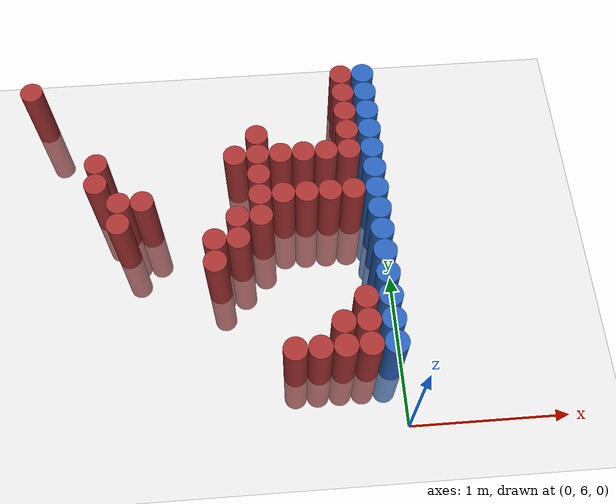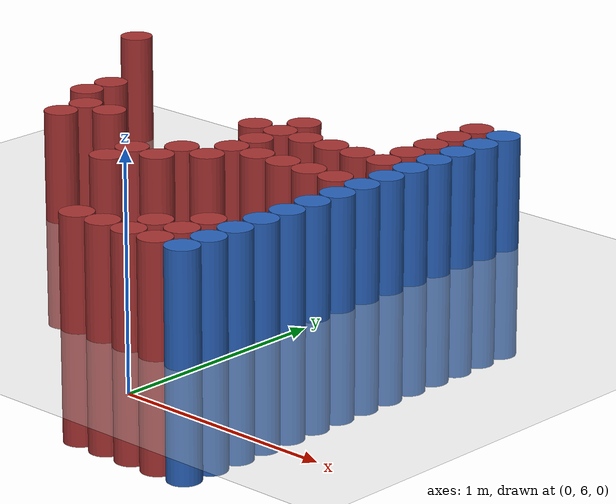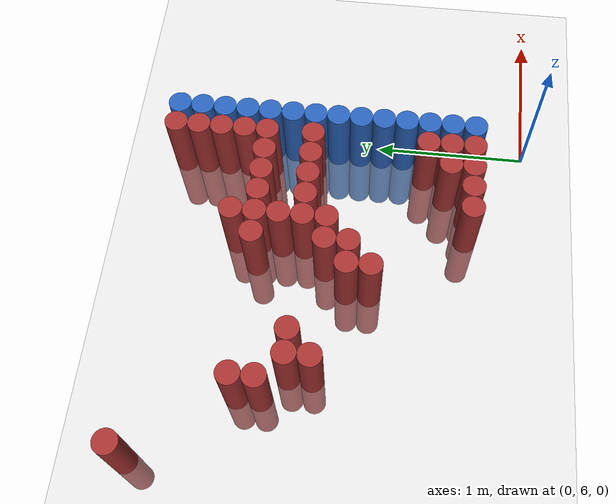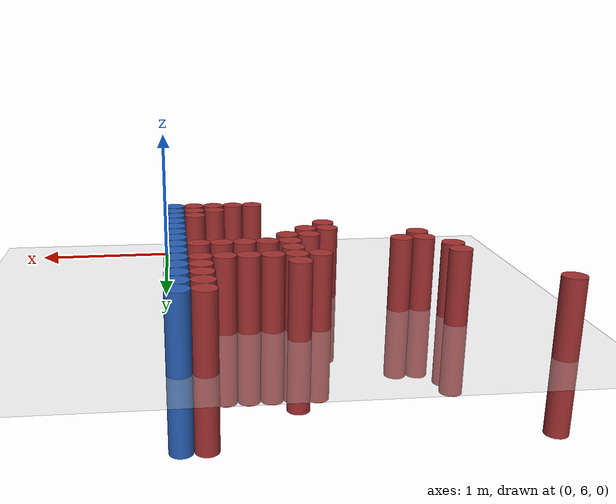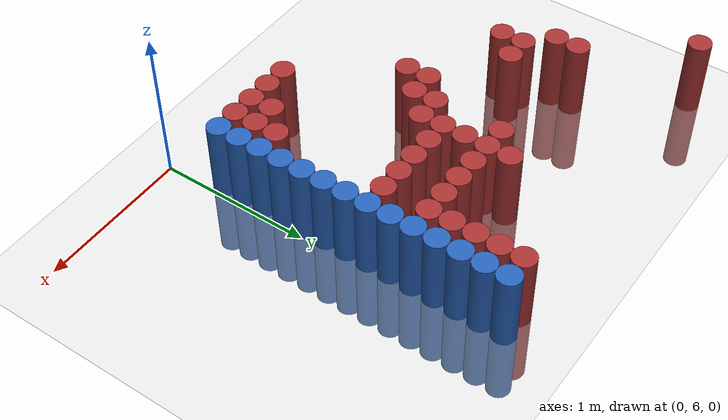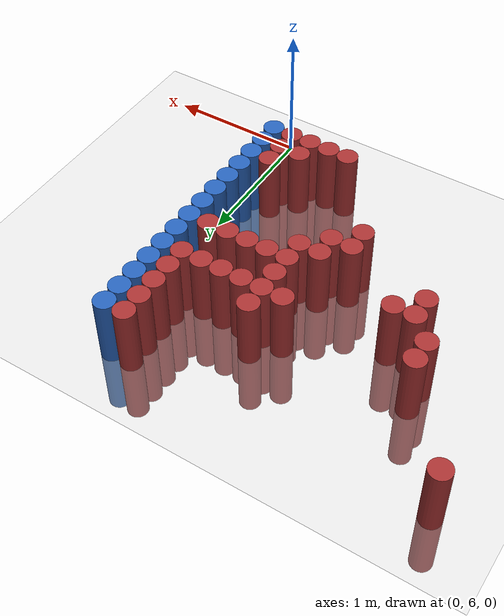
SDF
<sdf version="1.6">
 <world name="default">
  <model name="ground_plane">
   <static>1</static>
   <link name="link">
    <collision name="collision">
     <geometry><plane><normal>0 0 1</normal><size>100 100</size></plane></geometry>
     <surface><friction><ode><mu>100</mu><mu2>50</mu2></ode></friction></surface>
    </collision>
    <visual name="visual">
     <cast_shadows>0</cast_shadows>
     <geometry><plane><normal>0 0 1</normal><size>100 100</size></plane></geometry>
     <material>
      <script><uri>file://media/materials/scripts/gazebo.material</uri><name>Gazebo/Grey</name></script>
     </material>
    </visual>
   </link>
  </model>
  <model name="unit_cylinder_171">
   <static>1</static>
   <pose>-2.325000 8.325000 0.000000 0.000000 0.000000 0.000000</pose>
   <link name="link">
    <inertial>
     <mass>1</mass>
     <inertia><ixx>0.145833</ixx><ixy>0</ixy><ixz>0</ixz><iyy>0.145833</iyy><iyz>0</iyz><izz>0.125</izz></inertia>
    </inertial>
    <collision name="collision">
     <geometry><cylinder><radius>0.075000</radius><length>1</length></cylinder></geometry>
    </collision>
    <visual name="visual">
     <geometry><cylinder><radius>0.075000</radius><length>1</length></cylinder></geometry>
     <material>
      <ambient>0.648000 0.192000 0.192000 1</ambient>
      <diffuse>0.648000 0.192000 0.192000 1</diffuse>
     </material>
     <material>
      <script><name>Gazebo/Grey</name><uri>file://media/materials/scripts/gazebo.material</uri></script>
     </material>
    </visual>
   </link>
  </model>
  <model name="unit_cylinder_178">
   <static>1</static>
   <pose>-1.875000 7.575000 0.000000 0.000000 0.000000 0.000000</pose>
   <link name="link">
    <inertial>
     <mass>1</mass>
     <inertia><ixx>0.145833</ixx><ixy>0</ixy><ixz>0</ixz><iyy>0.145833</iyy><iyz>0</iyz><izz>0.125</izz></inertia>
    </inertial>
    <collision name="collision">
     <geometry><cylinder><radius>0.075000</radius><length>1</length></cylinder></geometry>
    </collision>
    <visual name="visual">
     <geometry><cylinder><radius>0.075000</radius><length>1</length></cylinder></geometry>
     <material>
      <ambient>0.648000 0.192000 0.192000 1</ambient>
      <diffuse>0.648000 0.192000 0.192000 1</diffuse>
     </material>
     <material>
      <script><name>Gazebo/Grey</name><uri>file://media/materials/scripts/gazebo.material</uri></script>
     </material>
    </visual>
   </link>
  </model>
  <model name="unit_cylinder_179">
   <static>1</static>
   <pose>-1.875000 7.725000 0.000000 0.000000 0.000000 0.000000</pose>
   <link name="link">
    <inertial>
     <mass>1</mass>
     <inertia><ixx>0.145833</ixx><ixy>0</ixy><ixz>0</ixz><iyy>0.145833</iyy><iyz>0</iyz><izz>0.125</izz></inertia>
    </inertial>
    <collision name="collision">
     <geometry><cylinder><radius>0.075000</radius><length>1</length></cylinder></geometry>
    </collision>
    <visual name="visual">
     <geometry><cylinder><radius>0.075000</radius><length>1</length></cylinder></geometry>
     <material>
      <ambient>0.648000 0.192000 0.192000 1</ambient>
      <diffuse>0.648000 0.192000 0.192000 1</diffuse>
     </material>
     <material>
      <script><name>Gazebo/Grey</name><uri>file://media/materials/scripts/gazebo.material</uri></script>
     </material>
    </visual>
   </link>
  </model>
  <model name="unit_cylinder_187">
   <static>1</static>
   <pose>-1.725000 7.275000 0.000000 0.000000 0.000000 0.000000</pose>
   <link name="link">
    <inertial>
     <mass>1</mass>
     <inertia><ixx>0.145833</ixx><ixy>0</ixy><ixz>0</ixz><iyy>0.145833</iyy><iyz>0</iyz><izz>0.125</izz></inertia>
    </inertial>
    <collision name="collision">
     <geometry><cylinder><radius>0.075000</radius><length>1</length></cylinder></geometry>
    </collision>
    <visual name="visual">
     <geometry><cylinder><radius>0.075000</radius><length>1</length></cylinder></geometry>
     <material>
      <ambient>0.648000 0.192000 0.192000 1</ambient>
      <diffuse>0.648000 0.192000 0.192000 1</diffuse>
     </material>
     <material>
      <script><name>Gazebo/Grey</name><uri>file://media/materials/scripts/gazebo.material</uri></script>
     </material>
    </visual>
   </link>
  </model>
  <model name="unit_cylinder_188">
   <static>1</static>
   <pose>-1.725000 7.425000 0.000000 0.000000 0.000000 0.000000</pose>
   <link name="link">
    <inertial>
     <mass>1</mass>
     <inertia><ixx>0.145833</ixx><ixy>0</ixy><ixz>0</ixz><iyy>0.145833</iyy><iyz>0</iyz><izz>0.125</izz></inertia>
    </inertial>
    <collision name="collision">
     <geometry><cylinder><radius>0.075000</radius><length>1</length></cylinder></geometry>
    </collision>
    <visual name="visual">
     <geometry><cylinder><radius>0.075000</radius><length>1</length></cylinder></geometry>
     <material>
      <ambient>0.648000 0.192000 0.192000 1</ambient>
      <diffuse>0.648000 0.192000 0.192000 1</diffuse>
     </material>
     <material>
      <script><name>Gazebo/Grey</name><uri>file://media/materials/scripts/gazebo.material</uri></script>
     </material>
    </visual>
   </link>
  </model>
  <model name="unit_cylinder_193">
   <static>1</static>
   <pose>-1.575000 7.425000 0.000000 0.000000 0.000000 0.000000</pose>
   <link name="link">
    <inertial>
     <mass>1</mass>
     <inertia><ixx>0.145833</ixx><ixy>0</ixy><ixz>0</ixz><iyy>0.145833</iyy><iyz>0</iyz><izz>0.125</izz></inertia>
    </inertial>
    <collision name="collision">
     <geometry><cylinder><radius>0.075000</radius><length>1</length></cylinder></geometry>
    </collision>
    <visual name="visual">
     <geometry><cylinder><radius>0.075000</radius><length>1</length></cylinder></geometry>
     <material>
      <ambient>0.648000 0.192000 0.192000 1</ambient>
      <diffuse>0.648000 0.192000 0.192000 1</diffuse>
     </material>
     <material>
      <script><name>Gazebo/Grey</name><uri>file://media/materials/scripts/gazebo.material</uri></script>
     </material>
    </visual>
   </link>
  </model>
  <model name="unit_cylinder_210">
   <static>1</static>
   <pose>-1.125000 6.975000 0.000000 0.000000 0.000000 0.000000</pose>
   <link name="link">
    <inertial>
     <mass>1</mass>
     <inertia><ixx>0.145833</ixx><ixy>0</ixy><ixz>0</ixz><iyy>0.145833</iyy><iyz>0</iyz><izz>0.125</izz></inertia>
    </inertial>
    <collision name="collision">
     <geometry><cylinder><radius>0.075000</radius><length>1</length></cylinder></geometry>
    </collision>
    <visual name="visual">
     <geometry><cylinder><radius>0.075000</radius><length>1</length></cylinder></geometry>
     <material>
      <ambient>0.648000 0.192000 0.192000 1</ambient>
      <diffuse>0.648000 0.192000 0.192000 1</diffuse>
     </material>
     <material>
      <script><name>Gazebo/Grey</name><uri>file://media/materials/scripts/gazebo.material</uri></script>
     </material>
    </visual>
   </link>
  </model>
  <model name="unit_cylinder_211">
   <static>1</static>
   <pose>-1.125000 7.125000 0.000000 0.000000 0.000000 0.000000</pose>
   <link name="link">
    <inertial>
     <mass>1</mass>
     <inertia><ixx>0.145833</ixx><ixy>0</ixy><ixz>0</ixz><iyy>0.145833</iyy><iyz>0</iyz><izz>0.125</izz></inertia>
    </inertial>
    <collision name="collision">
     <geometry><cylinder><radius>0.075000</radius><length>1</length></cylinder></geometry>
    </collision>
    <visual name="visual">
     <geometry><cylinder><radius>0.075000</radius><length>1</length></cylinder></geometry>
     <material>
      <ambient>0.648000 0.192000 0.192000 1</ambient>
      <diffuse>0.648000 0.192000 0.192000 1</diffuse>
     </material>
     <material>
      <script><name>Gazebo/Grey</name><uri>file://media/materials/scripts/gazebo.material</uri></script>
     </material>
    </visual>
   </link>
  </model>
  <model name="unit_cylinder_217">
   <static>1</static>
   <pose>-0.975000 7.125000 0.000000 0.000000 0.000000 0.000000</pose>
   <link name="link">
    <inertial>
     <mass>1</mass>
     <inertia><ixx>0.145833</ixx><ixy>0</ixy><ixz>0</ixz><iyy>0.145833</iyy><iyz>0</iyz><izz>0.125</izz></inertia>
    </inertial>
    <collision name="collision">
     <geometry><cylinder><radius>0.075000</radius><length>1</length></cylinder></geometry>
    </collision>
    <visual name="visual">
     <geometry><cylinder><radius>0.075000</radius><length>1</length></cylinder></geometry>
     <material>
      <ambient>0.648000 0.192000 0.192000 1</ambient>
      <diffuse>0.648000 0.192000 0.192000 1</diffuse>
     </material>
     <material>
      <script><name>Gazebo/Grey</name><uri>file://media/materials/scripts/gazebo.material</uri></script>
     </material>
    </visual>
   </link>
  </model>
  <model name="unit_cylinder_218">
   <static>1</static>
   <pose>-0.975000 7.275000 0.000000 0.000000 0.000000 0.000000</pose>
   <link name="link">
    <inertial>
     <mass>1</mass>
     <inertia><ixx>0.145833</ixx><ixy>0</ixy><ixz>0</ixz><iyy>0.145833</iyy><iyz>0</iyz><izz>0.125</izz></inertia>
    </inertial>
    <collision name="collision">
     <geometry><cylinder><radius>0.075000</radius><length>1</length></cylinder></geometry>
    </collision>
    <visual name="visual">
     <geometry><cylinder><radius>0.075000</radius><length>1</length></cylinder></geometry>
     <material>
      <ambient>0.648000 0.192000 0.192000 1</ambient>
      <diffuse>0.648000 0.192000 0.192000 1</diffuse>
     </material>
     <material>
      <script><name>Gazebo/Grey</name><uri>file://media/materials/scripts/gazebo.material</uri></script>
     </material>
    </visual>
   </link>
  </model>
  <model name="unit_cylinder_219">
   <static>1</static>
   <pose>-0.975000 7.725000 0.000000 0.000000 0.000000 0.000000</pose>
   <link name="link">
    <inertial>
     <mass>1</mass>
     <inertia><ixx>0.145833</ixx><ixy>0</ixy><ixz>0</ixz><iyy>0.145833</iyy><iyz>0</iyz><izz>0.125</izz></inertia>
    </inertial>
    <collision name="collision">
     <geometry><cylinder><radius>0.075000</radius><length>1</length></cylinder></geometry>
    </collision>
    <visual name="visual">
     <geometry><cylinder><radius>0.075000</radius><length>1</length></cylinder></geometry>
     <material>
      <ambient>0.648000 0.192000 0.192000 1</ambient>
      <diffuse>0.648000 0.192000 0.192000 1</diffuse>
     </material>
     <material>
      <script><name>Gazebo/Grey</name><uri>file://media/materials/scripts/gazebo.material</uri></script>
     </material>
    </visual>
   </link>
  </model>
  <model name="unit_cylinder_225">
   <static>1</static>
   <pose>-0.825000 7.275000 0.000000 0.000000 0.000000 0.000000</pose>
   <link name="link">
    <inertial>
     <mass>1</mass>
     <inertia><ixx>0.145833</ixx><ixy>0</ixy><ixz>0</ixz><iyy>0.145833</iyy><iyz>0</iyz><izz>0.125</izz></inertia>
    </inertial>
    <collision name="collision">
     <geometry><cylinder><radius>0.075000</radius><length>1</length></cylinder></geometry>
    </collision>
    <visual name="visual">
     <geometry><cylinder><radius>0.075000</radius><length>1</length></cylinder></geometry>
     <material>
      <ambient>0.648000 0.192000 0.192000 1</ambient>
      <diffuse>0.648000 0.192000 0.192000 1</diffuse>
     </material>
     <material>
      <script><name>Gazebo/Grey</name><uri>file://media/materials/scripts/gazebo.material</uri></script>
     </material>
    </visual>
   </link>
  </model>
  <model name="unit_cylinder_226">
   <static>1</static>
   <pose>-0.825000 7.425000 0.000000 0.000000 0.000000 0.000000</pose>
   <link name="link">
    <inertial>
     <mass>1</mass>
     <inertia><ixx>0.145833</ixx><ixy>0</ixy><ixz>0</ixz><iyy>0.145833</iyy><iyz>0</iyz><izz>0.125</izz></inertia>
    </inertial>
    <collision name="collision">
     <geometry><cylinder><radius>0.075000</radius><length>1</length></cylinder></geometry>
    </collision>
    <visual name="visual">
     <geometry><cylinder><radius>0.075000</radius><length>1</length></cylinder></geometry>
     <material>
      <ambient>0.648000 0.192000 0.192000 1</ambient>
      <diffuse>0.648000 0.192000 0.192000 1</diffuse>
     </material>
     <material>
      <script><name>Gazebo/Grey</name><uri>file://media/materials/scripts/gazebo.material</uri></script>
     </material>
    </visual>
   </link>
  </model>
  <model name="unit_cylinder_227">
   <static>1</static>
   <pose>-0.825000 7.575000 0.000000 0.000000 0.000000 0.000000</pose>
   <link name="link">
    <inertial>
     <mass>1</mass>
     <inertia><ixx>0.145833</ixx><ixy>0</ixy><ixz>0</ixz><iyy>0.145833</iyy><iyz>0</iyz><izz>0.125</izz></inertia>
    </inertial>
    <collision name="collision">
     <geometry><cylinder><radius>0.075000</radius><length>1</length></cylinder></geometry>
    </collision>
    <visual name="visual">
     <geometry><cylinder><radius>0.075000</radius><length>1</length></cylinder></geometry>
     <material>
      <ambient>0.648000 0.192000 0.192000 1</ambient>
      <diffuse>0.648000 0.192000 0.192000 1</diffuse>
     </material>
     <material>
      <script><name>Gazebo/Grey</name><uri>file://media/materials/scripts/gazebo.material</uri></script>
     </material>
    </visual>
   </link>
  </model>
  <model name="unit_cylinder_228">
   <static>1</static>
   <pose>-0.825000 7.725000 0.000000 0.000000 0.000000 0.000000</pose>
   <link name="link">
    <inertial>
     <mass>1</mass>
     <inertia><ixx>0.145833</ixx><ixy>0</ixy><ixz>0</ixz><iyy>0.145833</iyy><iyz>0</iyz><izz>0.125</izz></inertia>
    </inertial>
    <collision name="collision">
     <geometry><cylinder><radius>0.075000</radius><length>1</length></cylinder></geometry>
    </collision>
    <visual name="visual">
     <geometry><cylinder><radius>0.075000</radius><length>1</length></cylinder></geometry>
     <material>
      <ambient>0.648000 0.192000 0.192000 1</ambient>
      <diffuse>0.648000 0.192000 0.192000 1</diffuse>
     </material>
     <material>
      <script><name>Gazebo/Grey</name><uri>file://media/materials/scripts/gazebo.material</uri></script>
     </material>
    </visual>
   </link>
  </model>
  <model name="unit_cylinder_229">
   <static>1</static>
   <pose>-0.825000 7.875000 0.000000 0.000000 0.000000 0.000000</pose>
   <link name="link">
    <inertial>
     <mass>1</mass>
     <inertia><ixx>0.145833</ixx><ixy>0</ixy><ixz>0</ixz><iyy>0.145833</iyy><iyz>0</iyz><izz>0.125</izz></inertia>
    </inertial>
    <collision name="collision">
     <geometry><cylinder><radius>0.075000</radius><length>1</length></cylinder></geometry>
    </collision>
    <visual name="visual">
     <geometry><cylinder><radius>0.075000</radius><length>1</length></cylinder></geometry>
     <material>
      <ambient>0.648000 0.192000 0.192000 1</ambient>
      <diffuse>0.648000 0.192000 0.192000 1</diffuse>
     </material>
     <material>
      <script><name>Gazebo/Grey</name><uri>file://media/materials/scripts/gazebo.material</uri></script>
     </material>
    </visual>
   </link>
  </model>
  <model name="unit_cylinder_233">
   <static>1</static>
   <pose>-0.675000 6.375000 0.000000 0.000000 0.000000 0.000000</pose>
   <link name="link">
    <inertial>
     <mass>1</mass>
     <inertia><ixx>0.145833</ixx><ixy>0</ixy><ixz>0</ixz><iyy>0.145833</iyy><iyz>0</iyz><izz>0.125</izz></inertia>
    </inertial>
    <collision name="collision">
     <geometry><cylinder><radius>0.075000</radius><length>1</length></cylinder></geometry>
    </collision>
    <visual name="visual">
     <geometry><cylinder><radius>0.075000</radius><length>1</length></cylinder></geometry>
     <material>
      <ambient>0.648000 0.192000 0.192000 1</ambient>
      <diffuse>0.648000 0.192000 0.192000 1</diffuse>
     </material>
     <material>
      <script><name>Gazebo/Grey</name><uri>file://media/materials/scripts/gazebo.material</uri></script>
     </material>
    </visual>
   </link>
  </model>
  <model name="unit_cylinder_234">
   <static>1</static>
   <pose>-0.675000 7.425000 0.000000 0.000000 0.000000 0.000000</pose>
   <link name="link">
    <inertial>
     <mass>1</mass>
     <inertia><ixx>0.145833</ixx><ixy>0</ixy><ixz>0</ixz><iyy>0.145833</iyy><iyz>0</iyz><izz>0.125</izz></inertia>
    </inertial>
    <collision name="collision">
     <geometry><cylinder><radius>0.075000</radius><length>1</length></cylinder></geometry>
    </collision>
    <visual name="visual">
     <geometry><cylinder><radius>0.075000</radius><length>1</length></cylinder></geometry>
     <material>
      <ambient>0.648000 0.192000 0.192000 1</ambient>
      <diffuse>0.648000 0.192000 0.192000 1</diffuse>
     </material>
     <material>
      <script><name>Gazebo/Grey</name><uri>file://media/materials/scripts/gazebo.material</uri></script>
     </material>
    </visual>
   </link>
  </model>
  <model name="unit_cylinder_235">
   <static>1</static>
   <pose>-0.675000 7.725000 0.000000 0.000000 0.000000 0.000000</pose>
   <link name="link">
    <inertial>
     <mass>1</mass>
     <inertia><ixx>0.145833</ixx><ixy>0</ixy><ixz>0</ixz><iyy>0.145833</iyy><iyz>0</iyz><izz>0.125</izz></inertia>
    </inertial>
    <collision name="collision">
     <geometry><cylinder><radius>0.075000</radius><length>1</length></cylinder></geometry>
    </collision>
    <visual name="visual">
     <geometry><cylinder><radius>0.075000</radius><length>1</length></cylinder></geometry>
     <material>
      <ambient>0.648000 0.192000 0.192000 1</ambient>
      <diffuse>0.648000 0.192000 0.192000 1</diffuse>
     </material>
     <material>
      <script><name>Gazebo/Grey</name><uri>file://media/materials/scripts/gazebo.material</uri></script>
     </material>
    </visual>
   </link>
  </model>
  <model name="unit_cylinder_237">
   <static>1</static>
   <pose>-0.525000 6.375000 0.000000 0.000000 0.000000 0.000000</pose>
   <link name="link">
    <inertial>
     <mass>1</mass>
     <inertia><ixx>0.145833</ixx><ixy>0</ixy><ixz>0</ixz><iyy>0.145833</iyy><iyz>0</iyz><izz>0.125</izz></inertia>
    </inertial>
    <collision name="collision">
     <geometry><cylinder><radius>0.075000</radius><length>1</length></cylinder></geometry>
    </collision>
    <visual name="visual">
     <geometry><cylinder><radius>0.075000</radius><length>1</length></cylinder></geometry>
     <material>
      <ambient>0.648000 0.192000 0.192000 1</ambient>
      <diffuse>0.648000 0.192000 0.192000 1</diffuse>
     </material>
     <material>
      <script><name>Gazebo/Grey</name><uri>file://media/materials/scripts/gazebo.material</uri></script>
     </material>
    </visual>
   </link>
  </model>
  <model name="unit_cylinder_238">
   <static>1</static>
   <pose>-0.525000 7.425000 0.000000 0.000000 0.000000 0.000000</pose>
   <link name="link">
    <inertial>
     <mass>1</mass>
     <inertia><ixx>0.145833</ixx><ixy>0</ixy><ixz>0</ixz><iyy>0.145833</iyy><iyz>0</iyz><izz>0.125</izz></inertia>
    </inertial>
    <collision name="collision">
     <geometry><cylinder><radius>0.075000</radius><length>1</length></cylinder></geometry>
    </collision>
    <visual name="visual">
     <geometry><cylinder><radius>0.075000</radius><length>1</length></cylinder></geometry>
     <material>
      <ambient>0.648000 0.192000 0.192000 1</ambient>
      <diffuse>0.648000 0.192000 0.192000 1</diffuse>
     </material>
     <material>
      <script><name>Gazebo/Grey</name><uri>file://media/materials/scripts/gazebo.material</uri></script>
     </material>
    </visual>
   </link>
  </model>
  <model name="unit_cylinder_239">
   <static>1</static>
   <pose>-0.525000 7.725000 0.000000 0.000000 0.000000 0.000000</pose>
   <link name="link">
    <inertial>
     <mass>1</mass>
     <inertia><ixx>0.145833</ixx><ixy>0</ixy><ixz>0</ixz><iyy>0.145833</iyy><iyz>0</iyz><izz>0.125</izz></inertia>
    </inertial>
    <collision name="collision">
     <geometry><cylinder><radius>0.075000</radius><length>1</length></cylinder></geometry>
    </collision>
    <visual name="visual">
     <geometry><cylinder><radius>0.075000</radius><length>1</length></cylinder></geometry>
     <material>
      <ambient>0.648000 0.192000 0.192000 1</ambient>
      <diffuse>0.648000 0.192000 0.192000 1</diffuse>
     </material>
     <material>
      <script><name>Gazebo/Grey</name><uri>file://media/materials/scripts/gazebo.material</uri></script>
     </material>
    </visual>
   </link>
  </model>
  <model name="unit_cylinder_240">
   <static>1</static>
   <pose>-0.375000 6.375000 0.000000 0.000000 0.000000 0.000000</pose>
   <link name="link">
    <inertial>
     <mass>1</mass>
     <inertia><ixx>0.145833</ixx><ixy>0</ixy><ixz>0</ixz><iyy>0.145833</iyy><iyz>0</iyz><izz>0.125</izz></inertia>
    </inertial>
    <collision name="collision">
     <geometry><cylinder><radius>0.075000</radius><length>1</length></cylinder></geometry>
    </collision>
    <visual name="visual">
     <geometry><cylinder><radius>0.075000</radius><length>1</length></cylinder></geometry>
     <material>
      <ambient>0.648000 0.192000 0.192000 1</ambient>
      <diffuse>0.648000 0.192000 0.192000 1</diffuse>
     </material>
     <material>
      <script><name>Gazebo/Grey</name><uri>file://media/materials/scripts/gazebo.material</uri></script>
     </material>
    </visual>
   </link>
  </model>
  <model name="unit_cylinder_241">
   <static>1</static>
   <pose>-0.375000 6.525000 0.000000 0.000000 0.000000 0.000000</pose>
   <link name="link">
    <inertial>
     <mass>1</mass>
     <inertia><ixx>0.145833</ixx><ixy>0</ixy><ixz>0</ixz><iyy>0.145833</iyy><iyz>0</iyz><izz>0.125</izz></inertia>
    </inertial>
    <collision name="collision">
     <geometry><cylinder><radius>0.075000</radius><length>1</length></cylinder></geometry>
    </collision>
    <visual name="visual">
     <geometry><cylinder><radius>0.075000</radius><length>1</length></cylinder></geometry>
     <material>
      <ambient>0.648000 0.192000 0.192000 1</ambient>
      <diffuse>0.648000 0.192000 0.192000 1</diffuse>
     </material>
     <material>
      <script><name>Gazebo/Grey</name><uri>file://media/materials/scripts/gazebo.material</uri></script>
     </material>
    </visual>
   </link>
  </model>
  <model name="unit_cylinder_242">
   <static>1</static>
   <pose>-0.375000 7.425000 0.000000 0.000000 0.000000 0.000000</pose>
   <link name="link">
    <inertial>
     <mass>1</mass>
     <inertia><ixx>0.145833</ixx><ixy>0</ixy><ixz>0</ixz><iyy>0.145833</iyy><iyz>0</iyz><izz>0.125</izz></inertia>
    </inertial>
    <collision name="collision">
     <geometry><cylinder><radius>0.075000</radius><length>1</length></cylinder></geometry>
    </collision>
    <visual name="visual">
     <geometry><cylinder><radius>0.075000</radius><length>1</length></cylinder></geometry>
     <material>
      <ambient>0.648000 0.192000 0.192000 1</ambient>
      <diffuse>0.648000 0.192000 0.192000 1</diffuse>
     </material>
     <material>
      <script><name>Gazebo/Grey</name><uri>file://media/materials/scripts/gazebo.material</uri></script>
     </material>
    </visual>
   </link>
  </model>
  <model name="unit_cylinder_243">
   <static>1</static>
   <pose>-0.375000 7.725000 0.000000 0.000000 0.000000 0.000000</pose>
   <link name="link">
    <inertial>
     <mass>1</mass>
     <inertia><ixx>0.145833</ixx><ixy>0</ixy><ixz>0</ixz><iyy>0.145833</iyy><iyz>0</iyz><izz>0.125</izz></inertia>
    </inertial>
    <collision name="collision">
     <geometry><cylinder><radius>0.075000</radius><length>1</length></cylinder></geometry>
    </collision>
    <visual name="visual">
     <geometry><cylinder><radius>0.075000</radius><length>1</length></cylinder></geometry>
     <material>
      <ambient>0.648000 0.192000 0.192000 1</ambient>
      <diffuse>0.648000 0.192000 0.192000 1</diffuse>
     </material>
     <material>
      <script><name>Gazebo/Grey</name><uri>file://media/materials/scripts/gazebo.material</uri></script>
     </material>
    </visual>
   </link>
  </model>
  <model name="unit_cylinder_247">
   <static>1</static>
   <pose>-0.225000 6.375000 0.000000 0.000000 0.000000 0.000000</pose>
   <link name="link">
    <inertial>
     <mass>1</mass>
     <inertia><ixx>0.145833</ixx><ixy>0</ixy><ixz>0</ixz><iyy>0.145833</iyy><iyz>0</iyz><izz>0.125</izz></inertia>
    </inertial>
    <collision name="collision">
     <geometry><cylinder><radius>0.075000</radius><length>1</length></cylinder></geometry>
    </collision>
    <visual name="visual">
     <geometry><cylinder><radius>0.075000</radius><length>1</length></cylinder></geometry>
     <material>
      <ambient>0.648000 0.192000 0.192000 1</ambient>
      <diffuse>0.648000 0.192000 0.192000 1</diffuse>
     </material>
     <material>
      <script><name>Gazebo/Grey</name><uri>file://media/materials/scripts/gazebo.material</uri></script>
     </material>
    </visual>
   </link>
  </model>
  <model name="unit_cylinder_248">
   <static>1</static>
   <pose>-0.225000 6.525000 0.000000 0.000000 0.000000 0.000000</pose>
   <link name="link">
    <inertial>
     <mass>1</mass>
     <inertia><ixx>0.145833</ixx><ixy>0</ixy><ixz>0</ixz><iyy>0.145833</iyy><iyz>0</iyz><izz>0.125</izz></inertia>
    </inertial>
    <collision name="collision">
     <geometry><cylinder><radius>0.075000</radius><length>1</length></cylinder></geometry>
    </collision>
    <visual name="visual">
     <geometry><cylinder><radius>0.075000</radius><length>1</length></cylinder></geometry>
     <material>
      <ambient>0.648000 0.192000 0.192000 1</ambient>
      <diffuse>0.648000 0.192000 0.192000 1</diffuse>
     </material>
     <material>
      <script><name>Gazebo/Grey</name><uri>file://media/materials/scripts/gazebo.material</uri></script>
     </material>
    </visual>
   </link>
  </model>
  <model name="unit_cylinder_249">
   <static>1</static>
   <pose>-0.225000 6.675000 0.000000 0.000000 0.000000 0.000000</pose>
   <link name="link">
    <inertial>
     <mass>1</mass>
     <inertia><ixx>0.145833</ixx><ixy>0</ixy><ixz>0</ixz><iyy>0.145833</iyy><iyz>0</iyz><izz>0.125</izz></inertia>
    </inertial>
    <collision name="collision">
     <geometry><cylinder><radius>0.075000</radius><length>1</length></cylinder></geometry>
    </collision>
    <visual name="visual">
     <geometry><cylinder><radius>0.075000</radius><length>1</length></cylinder></geometry>
     <material>
      <ambient>0.648000 0.192000 0.192000 1</ambient>
      <diffuse>0.648000 0.192000 0.192000 1</diffuse>
     </material>
     <material>
      <script><name>Gazebo/Grey</name><uri>file://media/materials/scripts/gazebo.material</uri></script>
     </material>
    </visual>
   </link>
  </model>
  <model name="unit_cylinder_250">
   <static>1</static>
   <pose>-0.225000 7.425000 0.000000 0.000000 0.000000 0.000000</pose>
   <link name="link">
    <inertial>
     <mass>1</mass>
     <inertia><ixx>0.145833</ixx><ixy>0</ixy><ixz>0</ixz><iyy>0.145833</iyy><iyz>0</iyz><izz>0.125</izz></inertia>
    </inertial>
    <collision name="collision">
     <geometry><cylinder><radius>0.075000</radius><length>1</length></cylinder></geometry>
    </collision>
    <visual name="visual">
     <geometry><cylinder><radius>0.075000</radius><length>1</length></cylinder></geometry>
     <material>
      <ambient>0.648000 0.192000 0.192000 1</ambient>
      <diffuse>0.648000 0.192000 0.192000 1</diffuse>
     </material>
     <material>
      <script><name>Gazebo/Grey</name><uri>file://media/materials/scripts/gazebo.material</uri></script>
     </material>
    </visual>
   </link>
  </model>
  <model name="unit_cylinder_251">
   <static>1</static>
   <pose>-0.225000 7.725000 0.000000 0.000000 0.000000 0.000000</pose>
   <link name="link">
    <inertial>
     <mass>1</mass>
     <inertia><ixx>0.145833</ixx><ixy>0</ixy><ixz>0</ixz><iyy>0.145833</iyy><iyz>0</iyz><izz>0.125</izz></inertia>
    </inertial>
    <collision name="collision">
     <geometry><cylinder><radius>0.075000</radius><length>1</length></cylinder></geometry>
    </collision>
    <visual name="visual">
     <geometry><cylinder><radius>0.075000</radius><length>1</length></cylinder></geometry>
     <material>
      <ambient>0.648000 0.192000 0.192000 1</ambient>
      <diffuse>0.648000 0.192000 0.192000 1</diffuse>
     </material>
     <material>
      <script><name>Gazebo/Grey</name><uri>file://media/materials/scripts/gazebo.material</uri></script>
     </material>
    </visual>
   </link>
  </model>
  <model name="unit_cylinder_252">
   <static>1</static>
   <pose>-0.225000 7.875000 0.000000 0.000000 0.000000 0.000000</pose>
   <link name="link">
    <inertial>
     <mass>1</mass>
     <inertia><ixx>0.145833</ixx><ixy>0</ixy><ixz>0</ixz><iyy>0.145833</iyy><iyz>0</iyz><izz>0.125</izz></inertia>
    </inertial>
    <collision name="collision">
     <geometry><cylinder><radius>0.075000</radius><length>1</length></cylinder></geometry>
    </collision>
    <visual name="visual">
     <geometry><cylinder><radius>0.075000</radius><length>1</length></cylinder></geometry>
     <material>
      <ambient>0.648000 0.192000 0.192000 1</ambient>
      <diffuse>0.648000 0.192000 0.192000 1</diffuse>
     </material>
     <material>
      <script><name>Gazebo/Grey</name><uri>file://media/materials/scripts/gazebo.material</uri></script>
     </material>
    </visual>
   </link>
  </model>
  <model name="unit_cylinder_253">
   <static>1</static>
   <pose>-0.225000 8.025000 0.000000 0.000000 0.000000 0.000000</pose>
   <link name="link">
    <inertial>
     <mass>1</mass>
     <inertia><ixx>0.145833</ixx><ixy>0</ixy><ixz>0</ixz><iyy>0.145833</iyy><iyz>0</iyz><izz>0.125</izz></inertia>
    </inertial>
    <collision name="collision">
     <geometry><cylinder><radius>0.075000</radius><length>1</length></cylinder></geometry>
    </collision>
    <visual name="visual">
     <geometry><cylinder><radius>0.075000</radius><length>1</length></cylinder></geometry>
     <material>
      <ambient>0.648000 0.192000 0.192000 1</ambient>
      <diffuse>0.648000 0.192000 0.192000 1</diffuse>
     </material>
     <material>
      <script><name>Gazebo/Grey</name><uri>file://media/materials/scripts/gazebo.material</uri></script>
     </material>
    </visual>
   </link>
  </model>
  <model name="unit_cylinder_254">
   <static>1</static>
   <pose>-0.225000 8.175000 0.000000 0.000000 0.000000 0.000000</pose>
   <link name="link">
    <inertial>
     <mass>1</mass>
     <inertia><ixx>0.145833</ixx><ixy>0</ixy><ixz>0</ixz><iyy>0.145833</iyy><iyz>0</iyz><izz>0.125</izz></inertia>
    </inertial>
    <collision name="collision">
     <geometry><cylinder><radius>0.075000</radius><length>1</length></cylinder></geometry>
    </collision>
    <visual name="visual">
     <geometry><cylinder><radius>0.075000</radius><length>1</length></cylinder></geometry>
     <material>
      <ambient>0.648000 0.192000 0.192000 1</ambient>
      <diffuse>0.648000 0.192000 0.192000 1</diffuse>
     </material>
     <material>
      <script><name>Gazebo/Grey</name><uri>file://media/materials/scripts/gazebo.material</uri></script>
     </material>
    </visual>
   </link>
  </model>
  <model name="unit_cylinder_255">
   <static>1</static>
   <pose>-0.225000 8.325000 0.000000 0.000000 0.000000 0.000000</pose>
   <link name="link">
    <inertial>
     <mass>1</mass>
     <inertia><ixx>0.145833</ixx><ixy>0</ixy><ixz>0</ixz><iyy>0.145833</iyy><iyz>0</iyz><izz>0.125</izz></inertia>
    </inertial>
    <collision name="collision">
     <geometry><cylinder><radius>0.075000</radius><length>1</length></cylinder></geometry>
    </collision>
    <visual name="visual">
     <geometry><cylinder><radius>0.075000</radius><length>1</length></cylinder></geometry>
     <material>
      <ambient>0.648000 0.192000 0.192000 1</ambient>
      <diffuse>0.648000 0.192000 0.192000 1</diffuse>
     </material>
     <material>
      <script><name>Gazebo/Grey</name><uri>file://media/materials/scripts/gazebo.material</uri></script>
     </material>
    </visual>
   </link>
  </model>
  <model name="unit_cylinder_272">
   <static>1</static>
   <pose>-0.075000 6.375000 0.000000 0.000000 0.000000 0.000000</pose>
   <link name="link">
    <inertial>
     <mass>1</mass>
     <inertia><ixx>0.145833</ixx><ixy>0</ixy><ixz>0</ixz><iyy>0.145833</iyy><iyz>0</iyz><izz>0.125</izz></inertia>
    </inertial>
    <collision name="collision">
     <geometry><cylinder><radius>0.075000</radius><length>1</length></cylinder></geometry>
    </collision>
    <visual name="visual">
     <geometry><cylinder><radius>0.075000</radius><length>1</length></cylinder></geometry>
     <material>
      <ambient>0.152000 0.379000 0.720000 1</ambient>
      <diffuse>0.152000 0.379000 0.720000 1</diffuse>
     </material>
     <material>
      <script><name>Gazebo/Grey</name><uri>file://media/materials/scripts/gazebo.material</uri></script>
     </material>
    </visual>
   </link>
  </model>
  <model name="unit_cylinder_273">
   <static>1</static>
   <pose>-0.075000 6.525000 0.000000 0.000000 0.000000 0.000000</pose>
   <link name="link">
    <inertial>
     <mass>1</mass>
     <inertia><ixx>0.145833</ixx><ixy>0</ixy><ixz>0</ixz><iyy>0.145833</iyy><iyz>0</iyz><izz>0.125</izz></inertia>
    </inertial>
    <collision name="collision">
     <geometry><cylinder><radius>0.075000</radius><length>1</length></cylinder></geometry>
    </collision>
    <visual name="visual">
     <geometry><cylinder><radius>0.075000</radius><length>1</length></cylinder></geometry>
     <material>
      <ambient>0.152000 0.379000 0.720000 1</ambient>
      <diffuse>0.152000 0.379000 0.720000 1</diffuse>
     </material>
     <material>
      <script><name>Gazebo/Grey</name><uri>file://media/materials/scripts/gazebo.material</uri></script>
     </material>
    </visual>
   </link>
  </model>
  <model name="unit_cylinder_274">
   <static>1</static>
   <pose>-0.075000 6.675000 0.000000 0.000000 0.000000 0.000000</pose>
   <link name="link">
    <inertial>
     <mass>1</mass>
     <inertia><ixx>0.145833</ixx><ixy>0</ixy><ixz>0</ixz><iyy>0.145833</iyy><iyz>0</iyz><izz>0.125</izz></inertia>
    </inertial>
    <collision name="collision">
     <geometry><cylinder><radius>0.075000</radius><length>1</length></cylinder></geometry>
    </collision>
    <visual name="visual">
     <geometry><cylinder><radius>0.075000</radius><length>1</length></cylinder></geometry>
     <material>
      <ambient>0.152000 0.379000 0.720000 1</ambient>
      <diffuse>0.152000 0.379000 0.720000 1</diffuse>
     </material>
     <material>
      <script><name>Gazebo/Grey</name><uri>file://media/materials/scripts/gazebo.material</uri></script>
     </material>
    </visual>
   </link>
  </model>
  <model name="unit_cylinder_275">
   <static>1</static>
   <pose>-0.075000 6.825000 0.000000 0.000000 0.000000 0.000000</pose>
   <link name="link">
    <inertial>
     <mass>1</mass>
     <inertia><ixx>0.145833</ixx><ixy>0</ixy><ixz>0</ixz><iyy>0.145833</iyy><iyz>0</iyz><izz>0.125</izz></inertia>
    </inertial>
    <collision name="collision">
     <geometry><cylinder><radius>0.075000</radius><length>1</length></cylinder></geometry>
    </collision>
    <visual name="visual">
     <geometry><cylinder><radius>0.075000</radius><length>1</length></cylinder></geometry>
     <material>
      <ambient>0.152000 0.379000 0.720000 1</ambient>
      <diffuse>0.152000 0.379000 0.720000 1</diffuse>
     </material>
     <material>
      <script><name>Gazebo/Grey</name><uri>file://media/materials/scripts/gazebo.material</uri></script>
     </material>
    </visual>
   </link>
  </model>
  <model name="unit_cylinder_276">
   <static>1</static>
   <pose>-0.075000 6.975000 0.000000 0.000000 0.000000 0.000000</pose>
   <link name="link">
    <inertial>
     <mass>1</mass>
     <inertia><ixx>0.145833</ixx><ixy>0</ixy><ixz>0</ixz><iyy>0.145833</iyy><iyz>0</iyz><izz>0.125</izz></inertia>
    </inertial>
    <collision name="collision">
     <geometry><cylinder><radius>0.075000</radius><length>1</length></cylinder></geometry>
    </collision>
    <visual name="visual">
     <geometry><cylinder><radius>0.075000</radius><length>1</length></cylinder></geometry>
     <material>
      <ambient>0.152000 0.379000 0.720000 1</ambient>
      <diffuse>0.152000 0.379000 0.720000 1</diffuse>
     </material>
     <material>
      <script><name>Gazebo/Grey</name><uri>file://media/materials/scripts/gazebo.material</uri></script>
     </material>
    </visual>
   </link>
  </model>
  <model name="unit_cylinder_277">
   <static>1</static>
   <pose>-0.075000 7.125000 0.000000 0.000000 0.000000 0.000000</pose>
   <link name="link">
    <inertial>
     <mass>1</mass>
     <inertia><ixx>0.145833</ixx><ixy>0</ixy><ixz>0</ixz><iyy>0.145833</iyy><iyz>0</iyz><izz>0.125</izz></inertia>
    </inertial>
    <collision name="collision">
     <geometry><cylinder><radius>0.075000</radius><length>1</length></cylinder></geometry>
    </collision>
    <visual name="visual">
     <geometry><cylinder><radius>0.075000</radius><length>1</length></cylinder></geometry>
     <material>
      <ambient>0.152000 0.379000 0.720000 1</ambient>
      <diffuse>0.152000 0.379000 0.720000 1</diffuse>
     </material>
     <material>
      <script><name>Gazebo/Grey</name><uri>file://media/materials/scripts/gazebo.material</uri></script>
     </material>
    </visual>
   </link>
  </model>
  <model name="unit_cylinder_278">
   <static>1</static>
   <pose>-0.075000 7.275000 0.000000 0.000000 0.000000 0.000000</pose>
   <link name="link">
    <inertial>
     <mass>1</mass>
     <inertia><ixx>0.145833</ixx><ixy>0</ixy><ixz>0</ixz><iyy>0.145833</iyy><iyz>0</iyz><izz>0.125</izz></inertia>
    </inertial>
    <collision name="collision">
     <geometry><cylinder><radius>0.075000</radius><length>1</length></cylinder></geometry>
    </collision>
    <visual name="visual">
     <geometry><cylinder><radius>0.075000</radius><length>1</length></cylinder></geometry>
     <material>
      <ambient>0.152000 0.379000 0.720000 1</ambient>
      <diffuse>0.152000 0.379000 0.720000 1</diffuse>
     </material>
     <material>
      <script><name>Gazebo/Grey</name><uri>file://media/materials/scripts/gazebo.material</uri></script>
     </material>
    </visual>
   </link>
  </model>
  <model name="unit_cylinder_279">
   <static>1</static>
   <pose>-0.075000 7.425000 0.000000 0.000000 0.000000 0.000000</pose>
   <link name="link">
    <inertial>
     <mass>1</mass>
     <inertia><ixx>0.145833</ixx><ixy>0</ixy><ixz>0</ixz><iyy>0.145833</iyy><iyz>0</iyz><izz>0.125</izz></inertia>
    </inertial>
    <collision name="collision">
     <geometry><cylinder><radius>0.075000</radius><length>1</length></cylinder></geometry>
    </collision>
    <visual name="visual">
     <geometry><cylinder><radius>0.075000</radius><length>1</length></cylinder></geometry>
     <material>
      <ambient>0.152000 0.379000 0.720000 1</ambient>
      <diffuse>0.152000 0.379000 0.720000 1</diffuse>
     </material>
     <material>
      <script><name>Gazebo/Grey</name><uri>file://media/materials/scripts/gazebo.material</uri></script>
     </material>
    </visual>
   </link>
  </model>
  <model name="unit_cylinder_280">
   <static>1</static>
   <pose>-0.075000 7.575000 0.000000 0.000000 0.000000 0.000000</pose>
   <link name="link">
    <inertial>
     <mass>1</mass>
     <inertia><ixx>0.145833</ixx><ixy>0</ixy><ixz>0</ixz><iyy>0.145833</iyy><iyz>0</iyz><izz>0.125</izz></inertia>
    </inertial>
    <collision name="collision">
     <geometry><cylinder><radius>0.075000</radius><length>1</length></cylinder></geometry>
    </collision>
    <visual name="visual">
     <geometry><cylinder><radius>0.075000</radius><length>1</length></cylinder></geometry>
     <material>
      <ambient>0.152000 0.379000 0.720000 1</ambient>
      <diffuse>0.152000 0.379000 0.720000 1</diffuse>
     </material>
     <material>
      <script><name>Gazebo/Grey</name><uri>file://media/materials/scripts/gazebo.material</uri></script>
     </material>
    </visual>
   </link>
  </model>
  <model name="unit_cylinder_281">
   <static>1</static>
   <pose>-0.075000 7.725000 0.000000 0.000000 0.000000 0.000000</pose>
   <link name="link">
    <inertial>
     <mass>1</mass>
     <inertia><ixx>0.145833</ixx><ixy>0</ixy><ixz>0</ixz><iyy>0.145833</iyy><iyz>0</iyz><izz>0.125</izz></inertia>
    </inertial>
    <collision name="collision">
     <geometry><cylinder><radius>0.075000</radius><length>1</length></cylinder></geometry>
    </collision>
    <visual name="visual">
     <geometry><cylinder><radius>0.075000</radius><length>1</length></cylinder></geometry>
     <material>
      <ambient>0.152000 0.379000 0.720000 1</ambient>
      <diffuse>0.152000 0.379000 0.720000 1</diffuse>
     </material>
     <material>
      <script><name>Gazebo/Grey</name><uri>file://media/materials/scripts/gazebo.material</uri></script>
     </material>
    </visual>
   </link>
  </model>
  <model name="unit_cylinder_282">
   <static>1</static>
   <pose>-0.075000 7.875000 0.000000 0.000000 0.000000 0.000000</pose>
   <link name="link">
    <inertial>
     <mass>1</mass>
     <inertia><ixx>0.145833</ixx><ixy>0</ixy><ixz>0</ixz><iyy>0.145833</iyy><iyz>0</iyz><izz>0.125</izz></inertia>
    </inertial>
    <collision name="collision">
     <geometry><cylinder><radius>0.075000</radius><length>1</length></cylinder></geometry>
    </collision>
    <visual name="visual">
     <geometry><cylinder><radius>0.075000</radius><length>1</length></cylinder></geometry>
     <material>
      <ambient>0.152000 0.379000 0.720000 1</ambient>
      <diffuse>0.152000 0.379000 0.720000 1</diffuse>
     </material>
     <material>
      <script><name>Gazebo/Grey</name><uri>file://media/materials/scripts/gazebo.material</uri></script>
     </material>
    </visual>
   </link>
  </model>
  <model name="unit_cylinder_283">
   <static>1</static>
   <pose>-0.075000 8.025000 0.000000 0.000000 0.000000 0.000000</pose>
   <link name="link">
    <inertial>
     <mass>1</mass>
     <inertia><ixx>0.145833</ixx><ixy>0</ixy><ixz>0</ixz><iyy>0.145833</iyy><iyz>0</iyz><izz>0.125</izz></inertia>
    </inertial>
    <collision name="collision">
     <geometry><cylinder><radius>0.075000</radius><length>1</length></cylinder></geometry>
    </collision>
    <visual name="visual">
     <geometry><cylinder><radius>0.075000</radius><length>1</length></cylinder></geometry>
     <material>
      <ambient>0.152000 0.379000 0.720000 1</ambient>
      <diffuse>0.152000 0.379000 0.720000 1</diffuse>
     </material>
     <material>
      <script><name>Gazebo/Grey</name><uri>file://media/materials/scripts/gazebo.material</uri></script>
     </material>
    </visual>
   </link>
  </model>
  <model name="unit_cylinder_284">
   <static>1</static>
   <pose>-0.075000 8.175000 0.000000 0.000000 0.000000 0.000000</pose>
   <link name="link">
    <inertial>
     <mass>1</mass>
     <inertia><ixx>0.145833</ixx><ixy>0</ixy><ixz>0</ixz><iyy>0.145833</iyy><iyz>0</iyz><izz>0.125</izz></inertia>
    </inertial>
    <collision name="collision">
     <geometry><cylinder><radius>0.075000</radius><length>1</length></cylinder></geometry>
    </collision>
    <visual name="visual">
     <geometry><cylinder><radius>0.075000</radius><length>1</length></cylinder></geometry>
     <material>
      <ambient>0.152000 0.379000 0.720000 1</ambient>
      <diffuse>0.152000 0.379000 0.720000 1</diffuse>
     </material>
     <material>
      <script><name>Gazebo/Grey</name><uri>file://media/materials/scripts/gazebo.material</uri></script>
     </material>
    </visual>
   </link>
  </model>
  <model name="unit_cylinder_285">
   <static>1</static>
   <pose>-0.075000 8.325000 0.000000 0.000000 0.000000 0.000000</pose>
   <link name="link">
    <inertial>
     <mass>1</mass>
     <inertia><ixx>0.145833</ixx><ixy>0</ixy><ixz>0</ixz><iyy>0.145833</iyy><iyz>0</iyz><izz>0.125</izz></inertia>
    </inertial>
    <collision name="collision">
     <geometry><cylinder><radius>0.075000</radius><length>1</length></cylinder></geometry>
    </collision>
    <visual name="visual">
     <geometry><cylinder><radius>0.075000</radius><length>1</length></cylinder></geometry>
     <material>
      <ambient>0.152000 0.379000 0.720000 1</ambient>
      <diffuse>0.152000 0.379000 0.720000 1</diffuse>
     </material>
     <material>
      <script><name>Gazebo/Grey</name><uri>file://media/materials/scripts/gazebo.material</uri></script>
     </material>
    </visual>
   </link>
  </model>
 </world>
</sdf>
